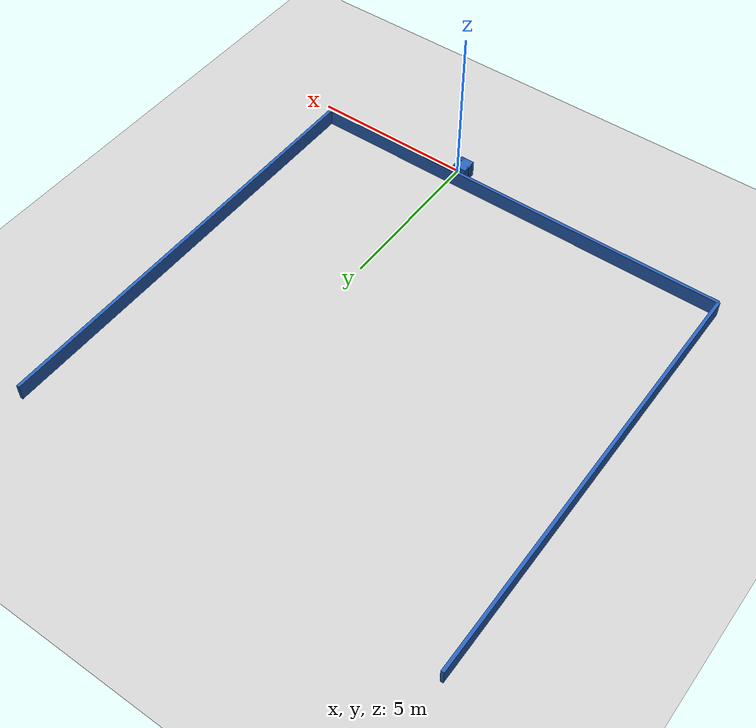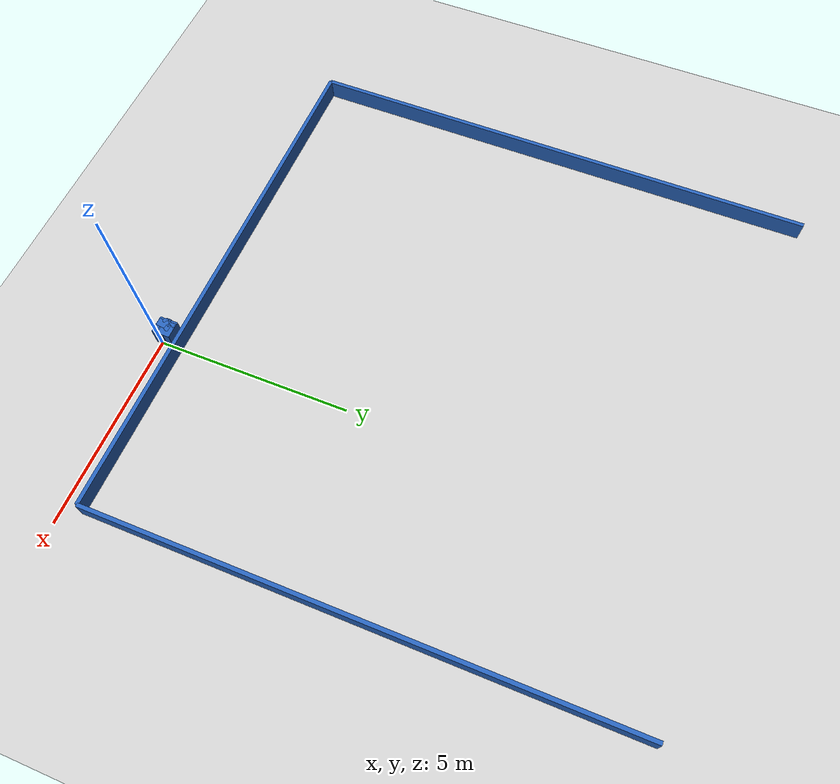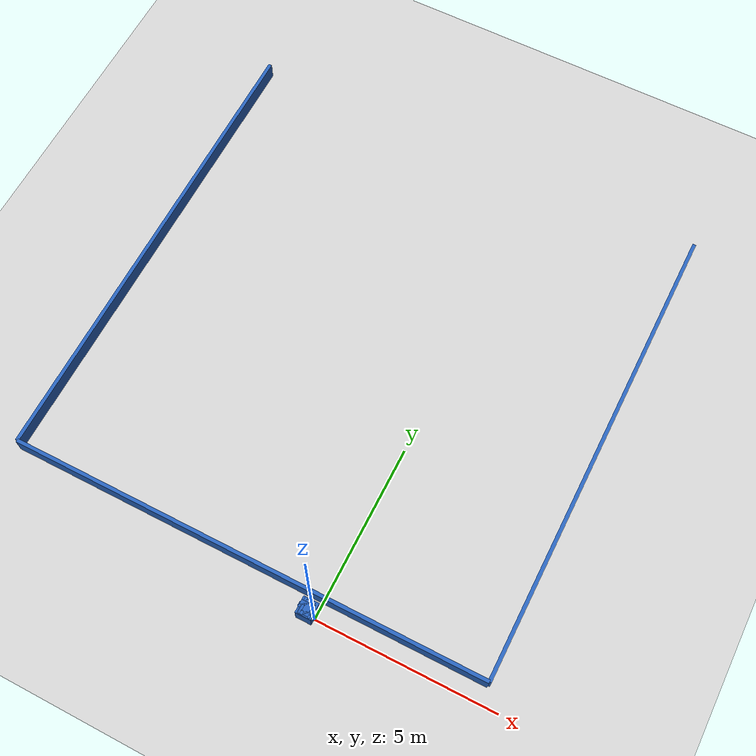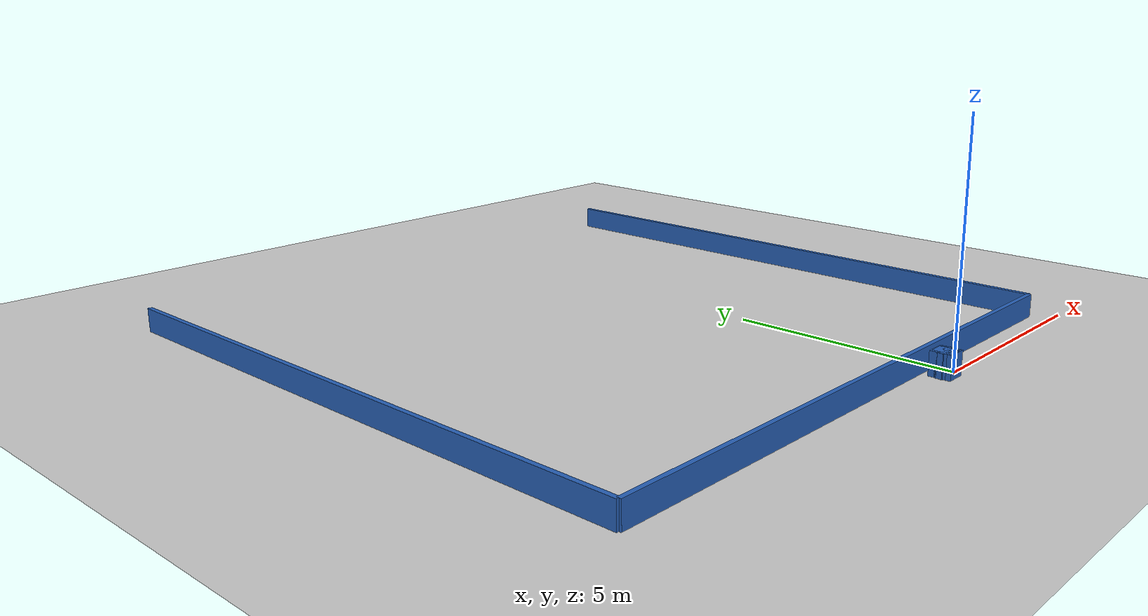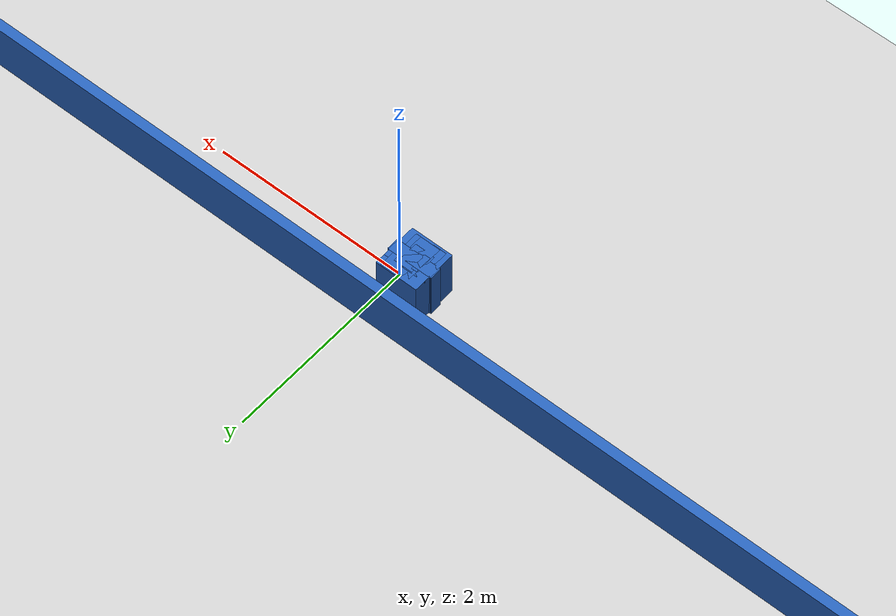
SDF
<?xml version="1.0" ?>
    <sdf version="1.5">
      <world name="default">
        <!-- A global light source -->
        <include>
          <uri>model://sun</uri>
        </include>
        <!-- A ground plane -->
        <include>
          <uri>model://ground_plane</uri>
        </include>

    <model name='libopen_space_final_T2B_77_65'>
      <static>1</static>
      <pose frame=''>-0.225000 0.075000 0.000000 0.000000 0.000000 0.000000</pose>
      <link name='link'>
        <inertial>
          <mass>1</mass>
          <inertia>
            <ixx>0.145833</ixx>
            <ixy>0</ixy>
            <ixz>0</ixz>
            <iyy>0.145833</iyy>
            <iyz>0</iyz>
            <izz>0.125</izz>
          </inertia>
        </inertial>
        <collision name='collision'>
          <geometry>
            <box>
              <size>0.31 0.42 1</size>
            </box>
          </geometry>
          <max_contacts>10</max_contacts>
          <surface>
            <contact>
              <ode/>
            </contact>
            <bounce/>
            <friction>
              <torsional>
                <ode/>
              </torsional>
              <ode/>
            </friction>
          </surface>
        </collision>
        <visual name='visual'>
          <geometry>
            <box>
              <size>0.31 0.42 1</size>
            </box>
          </geometry>
	    <material>
              <ambient>0.152000 0.379000 0.720000 1</ambient>
	      <diffuse>0.152000 0.379000 0.720000 1</diffuse>
          </material>
          <material>
            <script>
              <name>Gazebo/Grey</name>
              <uri>file://media/materials/scripts/gazebo.material</uri>
            </script>
          </material>
        </visual>
        <self_collide>0</self_collide>
        <kinematic>0</kinematic>
        <gravity>1</gravity>
      </link>
      <plugin name='libopen_space_final_T2B_77_65' filename='libopen_space_final_T2B_77_65.so'/>
    </model>

    <model name='libopen_space_final_T2B_80_26'>
      <static>1</static>
      <pose frame=''>-0.225000 0.075000 0.000000 0.000000 0.000000 0.000000</pose>
      <link name='link'>
        <inertial>
          <mass>1</mass>
          <inertia>
            <ixx>0.145833</ixx>
            <ixy>0</ixy>
            <ixz>0</ixz>
            <iyy>0.145833</iyy>
            <iyz>0</iyz>
            <izz>0.125</izz>
          </inertia>
        </inertial>
        <collision name='collision'>
          <geometry>
            <box>
              <size>0.44 0.26 1</size>
            </box>
          </geometry>
          <max_contacts>10</max_contacts>
          <surface>
            <contact>
              <ode/>
            </contact>
            <bounce/>
            <friction>
              <torsional>
                <ode/>
              </torsional>
              <ode/>
            </friction>
          </surface>
        </collision>
        <visual name='visual'>
          <geometry>
            <box>
              <size>0.44 0.26 1</size>
            </box>
          </geometry>
	    <material>
              <ambient>0.152000 0.379000 0.720000 1</ambient>
	      <diffuse>0.152000 0.379000 0.720000 1</diffuse>
          </material>
          <material>
            <script>
              <name>Gazebo/Grey</name>
              <uri>file://media/materials/scripts/gazebo.material</uri>
            </script>
          </material>
        </visual>
        <self_collide>0</self_collide>
        <kinematic>0</kinematic>
        <gravity>1</gravity>
      </link>
      <plugin name='libopen_space_final_T2B_80_26' filename='libopen_space_final_T2B_80_26.so'/>
    </model>

    <model name='libopen_space_final_T2B_77_58'>
      <static>1</static>
      <pose frame=''>-0.225000 0.075000 0.000000 0.000000 0.000000 0.000000</pose>
      <link name='link'>
        <inertial>
          <mass>1</mass>
          <inertia>
            <ixx>0.145833</ixx>
            <ixy>0</ixy>
            <ixz>0</ixz>
            <iyy>0.145833</iyy>
            <iyz>0</iyz>
            <izz>0.125</izz>
          </inertia>
        </inertial>
        <collision name='collision'>
          <geometry>
            <box>
              <size>0.24 0.39 1</size>
            </box>
          </geometry>
          <max_contacts>10</max_contacts>
          <surface>
            <contact>
              <ode/>
            </contact>
            <bounce/>
            <friction>
              <torsional>
                <ode/>
              </torsional>
              <ode/>
            </friction>
          </surface>
        </collision>
        <visual name='visual'>
          <geometry>
            <box>
              <size>0.24 0.39 1</size>
            </box>
          </geometry>
	    <material>
              <ambient>0.152000 0.379000 0.720000 1</ambient>
	      <diffuse>0.152000 0.379000 0.720000 1</diffuse>
          </material>
          <material>
            <script>
              <name>Gazebo/Grey</name>
              <uri>file://media/materials/scripts/gazebo.material</uri>
            </script>
          </material>
        </visual>
        <self_collide>0</self_collide>
        <kinematic>0</kinematic>
        <gravity>1</gravity>
      </link>
      <plugin name='libopen_space_final_T2B_77_58' filename='libopen_space_final_T2B_77_58.so'/>
    </model>

    <model name='libopen_space_final_T2B_77_83'>
      <static>1</static>
      <pose frame=''>-0.225000 0.075000 0.000000 0.000000 0.000000 0.000000</pose>
      <link name='link'>
        <inertial>
          <mass>1</mass>
          <inertia>
            <ixx>0.145833</ixx>
            <ixy>0</ixy>
            <ixz>0</ixz>
            <iyy>0.145833</iyy>
            <iyz>0</iyz>
            <izz>0.125</izz>
          </inertia>
        </inertial>
        <collision name='collision'>
          <geometry>
            <box>
              <size>0.18 0.25 1</size>
            </box>
          </geometry>
          <max_contacts>10</max_contacts>
          <surface>
            <contact>
              <ode/>
            </contact>
            <bounce/>
            <friction>
              <torsional>
                <ode/>
              </torsional>
              <ode/>
            </friction>
          </surface>
        </collision>
        <visual name='visual'>
          <geometry>
            <box>
              <size>0.18 0.25 1</size>
            </box>
          </geometry>
	    <material>
              <ambient>0.152000 0.379000 0.720000 1</ambient>
	      <diffuse>0.152000 0.379000 0.720000 1</diffuse>
          </material>
          <material>
            <script>
              <name>Gazebo/Grey</name>
              <uri>file://media/materials/scripts/gazebo.material</uri>
            </script>
          </material>
        </visual>
        <self_collide>0</self_collide>
        <kinematic>0</kinematic>
        <gravity>1</gravity>
      </link>
      <plugin name='libopen_space_final_T2B_77_83' filename='libopen_space_final_T2B_77_83.so'/>
    </model>

    <model name='libopen_space_final_T2B_100_36'>
      <static>1</static>
      <pose frame=''>-0.225000 0.075000 0.000000 0.000000 0.000000 0.000000</pose>
      <link name='link'>
        <inertial>
          <mass>1</mass>
          <inertia>
            <ixx>0.145833</ixx>
            <ixy>0</ixy>
            <ixz>0</ixz>
            <iyy>0.145833</iyy>
            <iyz>0</iyz>
            <izz>0.125</izz>
          </inertia>
        </inertial>
        <collision name='collision'>
          <geometry>
            <box>
              <size>0.20 0.18 1</size>
            </box>
          </geometry>
          <max_contacts>10</max_contacts>
          <surface>
            <contact>
              <ode/>
            </contact>
            <bounce/>
            <friction>
              <torsional>
                <ode/>
              </torsional>
              <ode/>
            </friction>
          </surface>
        </collision>
        <visual name='visual'>
          <geometry>
            <box>
              <size>0.20 0.18 1</size>
            </box>
          </geometry>
	    <material>
              <ambient>0.152000 0.379000 0.720000 1</ambient>
	      <diffuse>0.152000 0.379000 0.720000 1</diffuse>
          </material>
          <material>
            <script>
              <name>Gazebo/Grey</name>
              <uri>file://media/materials/scripts/gazebo.material</uri>
            </script>
          </material>
        </visual>
        <self_collide>0</self_collide>
        <kinematic>0</kinematic>
        <gravity>1</gravity>
      </link>
      <plugin name='libopen_space_final_T2B_100_36' filename='libopen_space_final_T2B_100_36.so'/>
    </model>

    <model name='libopen_space_final_T2B_51_1'>
      <static>1</static>
      <pose frame=''>-0.225000 0.075000 0.000000 0.000000 0.000000 0.000000</pose>
      <link name='link'>
        <inertial>
          <mass>1</mass>
          <inertia>
            <ixx>0.145833</ixx>
            <ixy>0</ixy>
            <ixz>0</ixz>
            <iyy>0.145833</iyy>
            <iyz>0</iyz>
            <izz>0.125</izz>
          </inertia>
        </inertial>
        <collision name='collision'>
          <geometry>
            <box>
              <size>0.34 0.43 1</size>
            </box>
          </geometry>
          <max_contacts>10</max_contacts>
          <surface>
            <contact>
              <ode/>
            </contact>
            <bounce/>
            <friction>
              <torsional>
                <ode/>
              </torsional>
              <ode/>
            </friction>
          </surface>
        </collision>
        <visual name='visual'>
          <geometry>
            <box>
              <size>0.34 0.43 1</size>
            </box>
          </geometry>
	    <material>
              <ambient>0.152000 0.379000 0.720000 1</ambient>
	      <diffuse>0.152000 0.379000 0.720000 1</diffuse>
          </material>
          <material>
            <script>
              <name>Gazebo/Grey</name>
              <uri>file://media/materials/scripts/gazebo.material</uri>
            </script>
          </material>
        </visual>
        <self_collide>0</self_collide>
        <kinematic>0</kinematic>
        <gravity>1</gravity>
      </link>
      <plugin name='libopen_space_final_T2B_51_1' filename='libopen_space_final_T2B_51_1.so'/>
    </model>

    <model name='libopen_space_final_T2B_66_3'>
      <static>1</static>
      <pose frame=''>-0.225000 0.075000 0.000000 0.000000 0.000000 0.000000</pose>
      <link name='link'>
        <inertial>
          <mass>1</mass>
          <inertia>
            <ixx>0.145833</ixx>
            <ixy>0</ixy>
            <ixz>0</ixz>
            <iyy>0.145833</iyy>
            <iyz>0</iyz>
            <izz>0.125</izz>
          </inertia>
        </inertial>
        <collision name='collision'>
          <geometry>
            <box>
              <size>0.24 0.24 1</size>
            </box>
          </geometry>
          <max_contacts>10</max_contacts>
          <surface>
            <contact>
              <ode/>
            </contact>
            <bounce/>
            <friction>
              <torsional>
                <ode/>
              </torsional>
              <ode/>
            </friction>
          </surface>
        </collision>
        <visual name='visual'>
          <geometry>
            <box>
              <size>0.24 0.24 1</size>
            </box>
          </geometry>
	    <material>
              <ambient>0.152000 0.379000 0.720000 1</ambient>
	      <diffuse>0.152000 0.379000 0.720000 1</diffuse>
          </material>
          <material>
            <script>
              <name>Gazebo/Grey</name>
              <uri>file://media/materials/scripts/gazebo.material</uri>
            </script>
          </material>
        </visual>
        <self_collide>0</self_collide>
        <kinematic>0</kinematic>
        <gravity>1</gravity>
      </link>
      <plugin name='libopen_space_final_T2B_66_3' filename='libopen_space_final_T2B_66_3.so'/>
    </model>

    <model name='libopen_space_final_T2B_52_49'>
      <static>1</static>
      <pose frame=''>-0.225000 0.075000 0.000000 0.000000 0.000000 0.000000</pose>
      <link name='link'>
        <inertial>
          <mass>1</mass>
          <inertia>
            <ixx>0.145833</ixx>
            <ixy>0</ixy>
            <ixz>0</ixz>
            <iyy>0.145833</iyy>
            <iyz>0</iyz>
            <izz>0.125</izz>
          </inertia>
        </inertial>
        <collision name='collision'>
          <geometry>
            <box>
              <size>0.10 0.18 1</size>
            </box>
          </geometry>
          <max_contacts>10</max_contacts>
          <surface>
            <contact>
              <ode/>
            </contact>
            <bounce/>
            <friction>
              <torsional>
                <ode/>
              </torsional>
              <ode/>
            </friction>
          </surface>
        </collision>
        <visual name='visual'>
          <geometry>
            <box>
              <size>0.10 0.18 1</size>
            </box>
          </geometry>
	    <material>
              <ambient>0.152000 0.379000 0.720000 1</ambient>
	      <diffuse>0.152000 0.379000 0.720000 1</diffuse>
          </material>
          <material>
            <script>
              <name>Gazebo/Grey</name>
              <uri>file://media/materials/scripts/gazebo.material</uri>
            </script>
          </material>
        </visual>
        <self_collide>0</self_collide>
        <kinematic>0</kinematic>
        <gravity>1</gravity>
      </link>
      <plugin name='libopen_space_final_T2B_52_49' filename='libopen_space_final_T2B_52_49.so'/>
    </model>

    <model name='libopen_space_final_T2B_115_16'>
      <static>1</static>
      <pose frame=''>-0.225000 0.075000 0.000000 0.000000 0.000000 0.000000</pose>
      <link name='link'>
        <inertial>
          <mass>1</mass>
          <inertia>
            <ixx>0.145833</ixx>
            <ixy>0</ixy>
            <ixz>0</ixz>
            <iyy>0.145833</iyy>
            <iyz>0</iyz>
            <izz>0.125</izz>
          </inertia>
        </inertial>
        <collision name='collision'>
          <geometry>
            <box>
              <size>0.21 0.42 1</size>
            </box>
          </geometry>
          <max_contacts>10</max_contacts>
          <surface>
            <contact>
              <ode/>
            </contact>
            <bounce/>
            <friction>
              <torsional>
                <ode/>
              </torsional>
              <ode/>
            </friction>
          </surface>
        </collision>
        <visual name='visual'>
          <geometry>
            <box>
              <size>0.21 0.42 1</size>
            </box>
          </geometry>
	    <material>
              <ambient>0.152000 0.379000 0.720000 1</ambient>
	      <diffuse>0.152000 0.379000 0.720000 1</diffuse>
          </material>
          <material>
            <script>
              <name>Gazebo/Grey</name>
              <uri>file://media/materials/scripts/gazebo.material</uri>
            </script>
          </material>
        </visual>
        <self_collide>0</self_collide>
        <kinematic>0</kinematic>
        <gravity>1</gravity>
      </link>
      <plugin name='libopen_space_final_T2B_115_16' filename='libopen_space_final_T2B_115_16.so'/>
    </model>

    <model name='libopen_space_final_T2B_105_38'>
      <static>1</static>
      <pose frame=''>-0.225000 0.075000 0.000000 0.000000 0.000000 0.000000</pose>
      <link name='link'>
        <inertial>
          <mass>1</mass>
          <inertia>
            <ixx>0.145833</ixx>
            <ixy>0</ixy>
            <ixz>0</ixz>
            <iyy>0.145833</iyy>
            <iyz>0</iyz>
            <izz>0.125</izz>
          </inertia>
        </inertial>
        <collision name='collision'>
          <geometry>
            <box>
              <size>0.35 0.46 1</size>
            </box>
          </geometry>
          <max_contacts>10</max_contacts>
          <surface>
            <contact>
              <ode/>
            </contact>
            <bounce/>
            <friction>
              <torsional>
                <ode/>
              </torsional>
              <ode/>
            </friction>
          </surface>
        </collision>
        <visual name='visual'>
          <geometry>
            <box>
              <size>0.35 0.46 1</size>
            </box>
          </geometry>
	    <material>
              <ambient>0.152000 0.379000 0.720000 1</ambient>
	      <diffuse>0.152000 0.379000 0.720000 1</diffuse>
          </material>
          <material>
            <script>
              <name>Gazebo/Grey</name>
              <uri>file://media/materials/scripts/gazebo.material</uri>
            </script>
          </material>
        </visual>
        <self_collide>0</self_collide>
        <kinematic>0</kinematic>
        <gravity>1</gravity>
      </link>
      <plugin name='libopen_space_final_T2B_105_38' filename='libopen_space_final_T2B_105_38.so'/>
    </model>

    <model name='libopen_space_final_T2B_85_62'>
      <static>1</static>
      <pose frame=''>-0.225000 0.075000 0.000000 0.000000 0.000000 0.000000</pose>
      <link name='link'>
        <inertial>
          <mass>1</mass>
          <inertia>
            <ixx>0.145833</ixx>
            <ixy>0</ixy>
            <ixz>0</ixz>
            <iyy>0.145833</iyy>
            <iyz>0</iyz>
            <izz>0.125</izz>
          </inertia>
        </inertial>
        <collision name='collision'>
          <geometry>
            <box>
              <size>0.46 0.13 1</size>
            </box>
          </geometry>
          <max_contacts>10</max_contacts>
          <surface>
            <contact>
              <ode/>
            </contact>
            <bounce/>
            <friction>
              <torsional>
                <ode/>
              </torsional>
              <ode/>
            </friction>
          </surface>
        </collision>
        <visual name='visual'>
          <geometry>
            <box>
              <size>0.46 0.13 1</size>
            </box>
          </geometry>
	    <material>
              <ambient>0.152000 0.379000 0.720000 1</ambient>
	      <diffuse>0.152000 0.379000 0.720000 1</diffuse>
          </material>
          <material>
            <script>
              <name>Gazebo/Grey</name>
              <uri>file://media/materials/scripts/gazebo.material</uri>
            </script>
          </material>
        </visual>
        <self_collide>0</self_collide>
        <kinematic>0</kinematic>
        <gravity>1</gravity>
      </link>
      <plugin name='libopen_space_final_T2B_85_62' filename='libopen_space_final_T2B_85_62.so'/>
    </model>

    <model name='libopen_space_final_T2B_51_63'>
      <static>1</static>
      <pose frame=''>-0.225000 0.075000 0.000000 0.000000 0.000000 0.000000</pose>
      <link name='link'>
        <inertial>
          <mass>1</mass>
          <inertia>
            <ixx>0.145833</ixx>
            <ixy>0</ixy>
            <ixz>0</ixz>
            <iyy>0.145833</iyy>
            <iyz>0</iyz>
            <izz>0.125</izz>
          </inertia>
        </inertial>
        <collision name='collision'>
          <geometry>
            <box>
              <size>0.44 0.47 1</size>
            </box>
          </geometry>
          <max_contacts>10</max_contacts>
          <surface>
            <contact>
              <ode/>
            </contact>
            <bounce/>
            <friction>
              <torsional>
                <ode/>
              </torsional>
              <ode/>
            </friction>
          </surface>
        </collision>
        <visual name='visual'>
          <geometry>
            <box>
              <size>0.44 0.47 1</size>
            </box>
          </geometry>
	    <material>
              <ambient>0.152000 0.379000 0.720000 1</ambient>
	      <diffuse>0.152000 0.379000 0.720000 1</diffuse>
          </material>
          <material>
            <script>
              <name>Gazebo/Grey</name>
              <uri>file://media/materials/scripts/gazebo.material</uri>
            </script>
          </material>
        </visual>
        <self_collide>0</self_collide>
        <kinematic>0</kinematic>
        <gravity>1</gravity>
      </link>
      <plugin name='libopen_space_final_T2B_51_63' filename='libopen_space_final_T2B_51_63.so'/>
    </model>

    <model name='libopen_space_final_T2B_61_88'>
      <static>1</static>
      <pose frame=''>-0.225000 0.075000 0.000000 0.000000 0.000000 0.000000</pose>
      <link name='link'>
        <inertial>
          <mass>1</mass>
          <inertia>
            <ixx>0.145833</ixx>
            <ixy>0</ixy>
            <ixz>0</ixz>
            <iyy>0.145833</iyy>
            <iyz>0</iyz>
            <izz>0.125</izz>
          </inertia>
        </inertial>
        <collision name='collision'>
          <geometry>
            <box>
              <size>0.48 0.12 1</size>
            </box>
          </geometry>
          <max_contacts>10</max_contacts>
          <surface>
            <contact>
              <ode/>
            </contact>
            <bounce/>
            <friction>
              <torsional>
                <ode/>
              </torsional>
              <ode/>
            </friction>
          </surface>
        </collision>
        <visual name='visual'>
          <geometry>
            <box>
              <size>0.48 0.12 1</size>
            </box>
          </geometry>
	    <material>
              <ambient>0.152000 0.379000 0.720000 1</ambient>
	      <diffuse>0.152000 0.379000 0.720000 1</diffuse>
          </material>
          <material>
            <script>
              <name>Gazebo/Grey</name>
              <uri>file://media/materials/scripts/gazebo.material</uri>
            </script>
          </material>
        </visual>
        <self_collide>0</self_collide>
        <kinematic>0</kinematic>
        <gravity>1</gravity>
      </link>
      <plugin name='libopen_space_final_T2B_61_88' filename='libopen_space_final_T2B_61_88.so'/>
    </model>

        <model name='bottom_wall'>
          <static>1</static>
          <pose frame=''>-2.25 0.5 0.000000 0.000000 0.000000 1.57079632</pose>
          <link name='link'>
            <inertial>
            <mass>1</mass>
            <inertia>
              <ixx>0.145833</ixx>
              <ixy>0</ixy>
              <ixz>0</ixz>
              <iyy>0.145833</iyy>
              <iyz>0</iyz>
              <izz>0.125</izz>
            </inertia>
            </inertial>
            <collision name='collision'>
            <geometry>
              <box>
              <size>0.1 13.5 1</size>
              </box>
            </geometry>
            <max_contacts>10</max_contacts>
            <surface>
              <contact>
              <ode/>
              </contact>
              <bounce/>
              <friction>
              <torsional>
                <ode/>
              </torsional>
              <ode/>
              </friction>
            </surface>
            </collision>
            <visual name='visual'>
            <geometry>
              <box>
              <size>0.1 13.5 1</size>
              </box>
            </geometry>
            <material>
              <ambient>0.152000 0.379000 0.720000 1</ambient>
            <diffuse>0.152000 0.379000 0.720000 1</diffuse>
            </material>
            <material>
              <script>
              <name>Gazebo/Grey</name>
              <uri>file://media/materials/scripts/gazebo.material</uri>
              </script>
            </material>
            </visual>
            <self_collide>0</self_collide>
            <kinematic>0</kinematic>
            <gravity>1</gravity>
          </link>
        </model>

        <model name='left_wall'>
          <static>1</static>
          <pose frame=''>-9 7.25 0.000000 0.000000 0.000000 0.000000</pose>
          <link name='link'>
            <inertial>
            <mass>1</mass>
            <inertia>
              <ixx>0.145833</ixx>
              <ixy>0</ixy>
              <ixz>0</ixz>
              <iyy>0.145833</iyy>
              <iyz>0</iyz>
              <izz>0.125</izz>
            </inertia>
            </inertial>
            <collision name='collision'>
            <geometry>
              <box>
              <size>0.1 13.5 1</size>
              </box>
            </geometry>
            <max_contacts>10</max_contacts>
            <surface>
              <contact>
              <ode/>
              </contact>
              <bounce/>
              <friction>
              <torsional>
                <ode/>
              </torsional>
              <ode/>
              </friction>
            </surface>
            </collision>
            <visual name='visual'>
            <geometry>
              <box>
              <size>0.1 13.5 1</size>
              </box>
            </geometry>
            <material>
              <ambient>0.152000 0.379000 0.720000 1</ambient>
            <diffuse>0.152000 0.379000 0.720000 1</diffuse>
            </material>
            <material>
              <script>
              <name>Gazebo/Grey</name>
              <uri>file://media/materials/scripts/gazebo.material</uri>
              </script>
            </material>
            </visual>
            <self_collide>0</self_collide>
            <kinematic>0</kinematic>
            <gravity>1</gravity>
          </link>
        </model>

        <model name='right_wall'>
          <static>1</static>
          <pose frame=''>4.5 7.25 0.000000 0.000000 0.000000 0.000000</pose>
          <link name='link'>
            <inertial>
            <mass>1</mass>
            <inertia>
              <ixx>0.145833</ixx>
              <ixy>0</ixy>
              <ixz>0</ixz>
              <iyy>0.145833</iyy>
              <iyz>0</iyz>
              <izz>0.125</izz>
            </inertia>
            </inertial>
            <collision name='collision'>
            <geometry>
              <box>
              <size>0.1 13.5 1</size>
              </box>
            </geometry>
            <max_contacts>10</max_contacts>
            <surface>
              <contact>
              <ode/>
              </contact>
              <bounce/>
              <friction>
              <torsional>
                <ode/>
              </torsional>
              <ode/>
              </friction>
            </surface>
            </collision>
            <visual name='visual'>
            <geometry>
              <box>
              <size>0.1 13.5 1</size>
              </box>
            </geometry>
            <material>
              <ambient>0.152000 0.379000 0.720000 1</ambient>
            <diffuse>0.152000 0.379000 0.720000 1</diffuse>
            </material>
            <material>
              <script>
              <name>Gazebo/Grey</name>
              <uri>file://media/materials/scripts/gazebo.material</uri>
              </script>
            </material>
            </visual>
            <self_collide>0</self_collide>
            <kinematic>0</kinematic>
            <gravity>1</gravity>
          </link>
        </model>

      </world>
    </sdf>"
